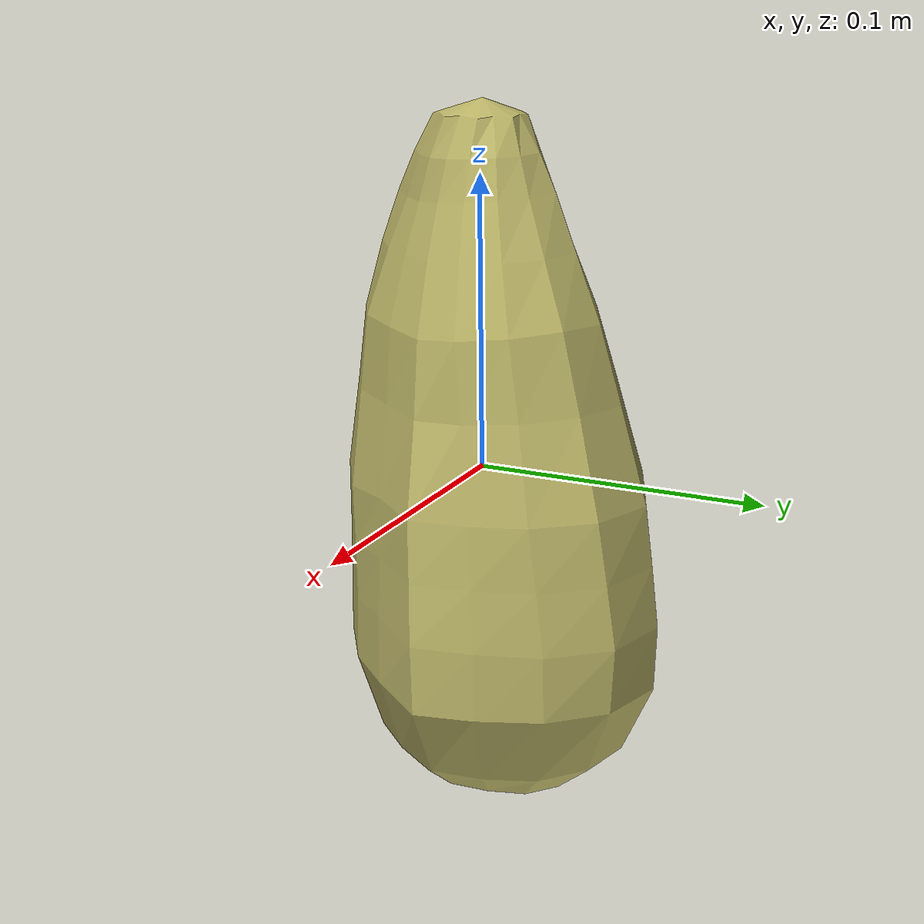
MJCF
<mujoco model="Lettuce_7">
  <compiler autolimits="true" boundmass="0.01" angle="radian"/>
  <default>
    <default class="/">
      <default class="__VISUAL_MJT__">
        <geom contype="0" conaffinity="0" group="0"/>
      </default>
      <default class="__STRUCTURAL_MJT__">
        <geom contype="8" conaffinity="15" group="4" friction="0.90000000000000002 0.90000000000000002 0.001" solref="0.025000000000000001 1" solimp="0.998 0.998 0.001"/>
      </default>
      <default class="__DYNAMIC_MJT__">
        <geom contype="1" conaffinity="15" group="4" friction="0.90000000000000002 0.90000000000000002 0.001" solref="0.025000000000000001 1" solimp="0.998 0.998 0.001"/>
      </default>
    </default>
  </default>
  <asset>
    <texture name="Lettuce1_Mat" type="2d" file="Lettuce1_AlbedoTransparency.png"/>
    <material name="material_Lettuce1_Mat" class="/" texture="Lettuce1_Mat" specular="0.5" shininess="0.5" rgba="0.9945233 1 0.60294119999999995 1"/>
    <mesh name="Lettuce_7_lettuce_a7" class="/" file="Lettuce_7_lettuce_a7/Lettuce_7_lettuce_a7.obj" scale="1 1 1"/>
  </asset>
  <worldbody>
    <body name="Lettuce_7">
      <joint name="Lettuce_7_free" class="/" type="free" pos="0 0 0" axis="0 0 1" stiffness="0" range="0 0" armature="0" damping="0.10000000000000001" frictionloss="0"/>
      <body name="Lettuce_7_lettuce_a7" pos="-0.0039300000000000003 0.00069999999999999999 0.00156" quat="1 0 0 0">
        <geom name="Lettuce_7_lettuce_a7" class="__VISUAL_MJT__" type="mesh" material="material_Lettuce1_Mat" shellinertia="true" mesh="Lettuce_7_lettuce_a7"/>
        <geom name="Lettuce_7_PrimitiveCollider_0" class="__DYNAMIC_MJT__" type="capsule" size="0.063513800501823425 0.038364134728908539" rgba="0 1 0 1" pos="-0.0039315223693847656 -0.00070324912667274475 -0.022696353495121002" quat="0.99999999999891198 1.4751396607739272e-06 0 0"/>
        <geom name="Lettuce_7_PrimitiveCollider_1" class="__DYNAMIC_MJT__" type="capsule" size="0.034299217164516449 0.017810024321079254" rgba="0 1 0 1" pos="-0.0034000000450760126 -0.0060998657718300819 0.069342851638793945" quat="0.99999999999891198 1.4751396607739272e-06 0 0"/>
      </body>
    </body>
  </worldbody>
</mujoco>
